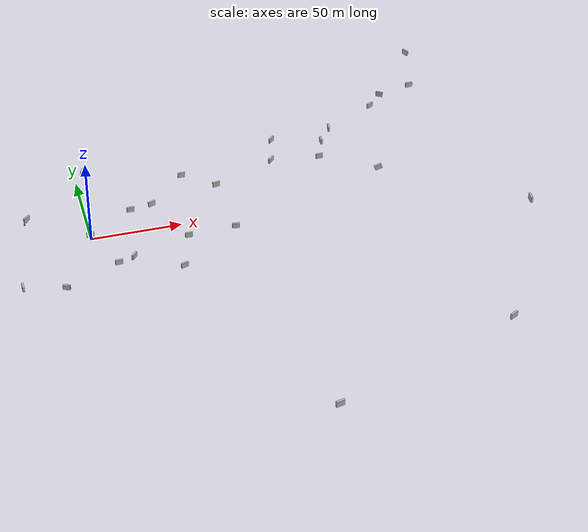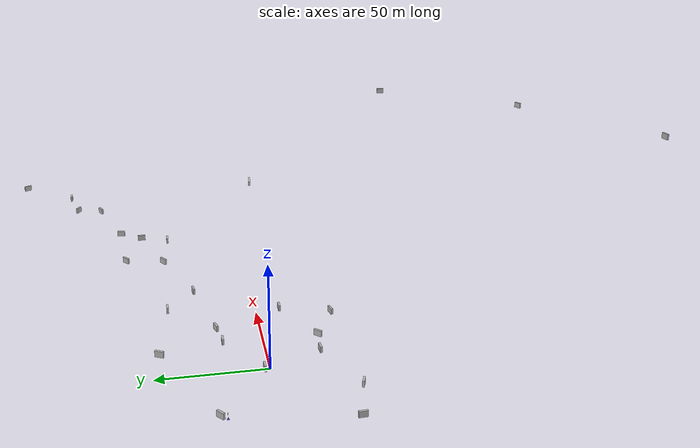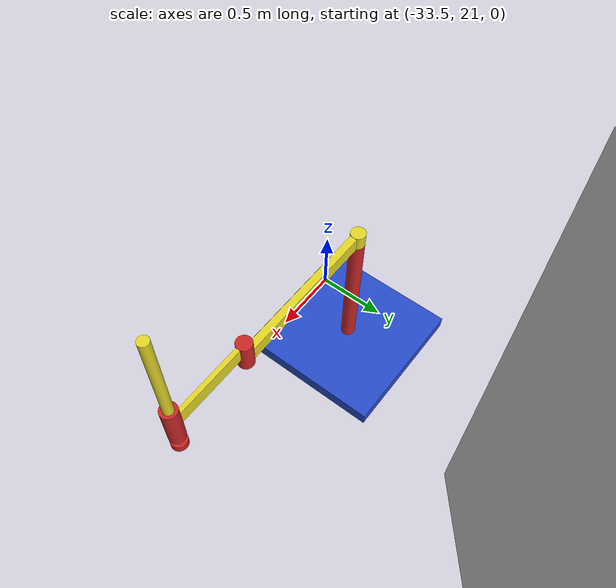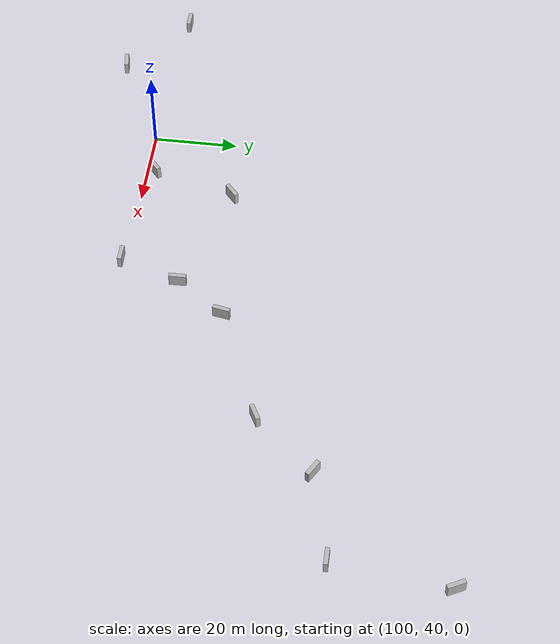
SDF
<sdf version="1.6">
 <world name="default">
  <scene>
   <grid>0</grid>
   <origin_visual>0</origin_visual>
   <ambient>0.4 0.4 0.4 1</ambient>
   <background>0.7 0.7 0.7 1</background>
   <shadows>1</shadows>
  </scene>
  <light name="sun" type="directional">
   <pose>0 0 -10 0 -0 0</pose>
   <diffuse>0.8 0.8 0.8 1</diffuse>
   <specular>0.2 0.2 0.2 1</specular>
   <attenuation>
    <range>1000</range>
    <constant>0.9</constant>
    <linear>0.01</linear>
    <quadratic>0.001</quadratic>
   </attenuation>
   <direction>-0.5 0.1 -0.9</direction>
  </light>
  <gravity>0 0 -9.8</gravity>
  <magnetic_field>6e-06 2.3e-05 -4.2e-05</magnetic_field>
  <atmosphere type="adiabatic"/>
  <physics name="default_physics" default="0" type="ode">
   <max_step_size>0.001</max_step_size>
   <real_time_factor>1</real_time_factor>
   <real_time_update_rate>1000</real_time_update_rate>
  </physics>
  <spherical_coordinates>
   <surface_model>EARTH_WGS84</surface_model>
   <latitude_deg>0</latitude_deg>
   <longitude_deg>0</longitude_deg>
   <elevation>0</elevation>
   <heading_deg>0</heading_deg>
  </spherical_coordinates>
  <model name="slide-0">
   <static>1</static>
   <link name="link">
    <pose>0 0 1.5 0 -0 0</pose>
    <collision name="collision"><geometry><box><size>4 1 3</size></box></geometry></collision>
    <visual name="visual">
     <geometry><box><size>4 1 3</size></box></geometry>
     <material>
      <script>
       <uri>model://slide-0/materials/scripts</uri>
       <uri>model://slide-0/materials/textures</uri>
       <name>Slides/slide_0</name>
      </script>
     </material>
    </visual>
   </link>
   <pose>219.596 121.414 5.9212 0 -0 2.05981</pose>
  </model>
  <model name="slide-1">
   <static>1</static>
   <link name="link">
    <pose>0 0 1.5 0 -0 0</pose>
    <collision name="collision"><geometry><box><size>4 1 3</size></box></geometry></collision>
    <visual name="visual">
     <geometry><box><size>4 1 3</size></box></geometry>
     <material>
      <script>
       <uri>model://slide-1/materials/scripts</uri>
       <uri>model://slide-1/materials/textures</uri>
       <name>Slides/slide_1</name>
      </script>
     </material>
    </visual>
   </link>
   <pose>213.255 95.2102 0 0 0 -3.13235</pose>
  </model>
  <model name="slide-2">
   <static>1</static>
   <link name="link">
    <pose>0 0 1.5 0 -0 0</pose>
    <collision name="collision"><geometry><box><size>4 1 3</size></box></geometry></collision>
    <visual name="visual">
     <geometry><box><size>4 1 3</size></box></geometry>
     <material>
      <script>
       <uri>model://slide-2/materials/scripts</uri>
       <uri>model://slide-2/materials/textures</uri>
       <name>Slides/slide_2</name>
      </script>
     </material>
    </visual>
   </link>
   <pose>192.468 89.9119 0.115548 0.020057 -0.032168 2.60794</pose>
  </model>
  <model name="slide-4">
   <static>1</static>
   <link name="link">
    <pose>0 0 1.5 0 -0 0</pose>
    <collision name="collision"><geometry><box><size>4 1 3</size></box></geometry></collision>
    <visual name="visual">
     <geometry><box><size>4 1 3</size></box></geometry>
     <material>
      <script>
       <uri>model://slide-4/materials/scripts</uri>
       <uri>model://slide-4/materials/textures</uri>
       <name>Slides/slide_4</name>
      </script>
     </material>
    </visual>
   </link>
   <pose>152.828 64.4325 0 0 -0 1.38353</pose>
  </model>
  <model name="slide-3">
   <static>1</static>
   <link name="link">
    <pose>0 0 1.5 0 -0 0</pose>
    <collision name="collision"><geometry><box><size>4 1 3</size></box></geometry></collision>
    <visual name="visual">
     <geometry><box><size>4 1 3</size></box></geometry>
     <material>
      <script>
       <uri>model://slide-3/materials/scripts</uri>
       <uri>model://slide-3/materials/textures</uri>
       <name>Slides/slide_3</name>
      </script>
     </material>
    </visual>
   </link>
   <pose>181.967 76.1868 2.92123 0 0 -2.64573</pose>
  </model>
  <model name="slide-5">
   <static>1</static>
   <link name="link">
    <pose>0 0 1.5 0 -0 0</pose>
    <collision name="collision"><geometry><box><size>4 1 3</size></box></geometry></collision>
    <visual name="visual">
     <geometry><box><size>4 1 3</size></box></geometry>
     <material>
      <script>
       <uri>model://slide-5/materials/scripts</uri>
       <uri>model://slide-5/materials/textures</uri>
       <name>Slides/slide_5</name>
      </script>
     </material>
    </visual>
   </link>
   <pose>144.815 53.0732 0.1709 0 -0 1.6033</pose>
  </model>
  <model name="slide-6">
   <static>1</static>
   <link name="link">
    <pose>0 0 1.5 0 -0 0</pose>
    <collision name="collision"><geometry><box><size>4 1 3</size></box></geometry></collision>
    <visual name="visual">
     <geometry><box><size>4 1 3</size></box></geometry>
     <material>
      <script>
       <uri>model://slide-6/materials/scripts</uri>
       <uri>model://slide-6/materials/textures</uri>
       <name>Slides/slide_6</name>
      </script>
     </material>
    </visual>
   </link>
   <pose>139.604 38.9382 0.14948 0 -0 0</pose>
  </model>
  <model name="slide-7">
   <static>1</static>
   <link name="link">
    <pose>0 0 1.5 0 -0 0</pose>
    <collision name="collision"><geometry><box><size>4 1 3</size></box></geometry></collision>
    <visual name="visual">
     <geometry><box><size>4 1 3</size></box></geometry>
     <material>
      <script>
       <uri>model://slide-7/materials/scripts</uri>
       <uri>model://slide-7/materials/textures</uri>
       <name>Slides/slide_7</name>
      </script>
     </material>
    </visual>
   </link>
   <pose>158.631 -10.182 24.6272 0 0.348285 3.05307</pose>
  </model>
  <model name="slide-8">
   <static>1</static>
   <link name="link">
    <pose>0 0 1.5 0 -0 0</pose>
    <collision name="collision"><geometry><box><size>4 1 3</size></box></geometry></collision>
    <visual name="visual">
     <geometry><box><size>4 1 3</size></box></geometry>
     <material>
      <script>
       <uri>model://slide-8/materials/scripts</uri>
       <uri>model://slide-8/materials/textures</uri>
       <name>Slides/slide_8</name>
      </script>
     </material>
    </visual>
   </link>
   <pose>206.477 -99.312 60.9982 0 0 -1.64659</pose>
  </model>
  <model name="slide-9">
   <static>1</static>
   <link name="link">
    <pose>0 0 1.5 0 -0 0</pose>
    <collision name="collision"><geometry><box><size>4 1 3</size></box></geometry></collision>
    <visual name="visual">
     <geometry><box><size>4 1 3</size></box></geometry>
     <material>
      <script>
       <uri>model://slide-9/materials/scripts</uri>
       <uri>model://slide-9/materials/textures</uri>
       <name>Slides/slide_9</name>
      </script>
     </material>
    </visual>
   </link>
   <pose>167.404 -174.953 58.7924 0 -0 0.465739</pose>
  </model>
  <model name="slide-10">
   <static>1</static>
   <link name="link">
    <pose>0 0 1.5 0 -0 0</pose>
    <collision name="collision"><geometry><box><size>4 1 3</size></box></geometry></collision>
    <visual name="visual">
     <geometry><box><size>4 1 3</size></box></geometry>
     <material>
      <script>
       <uri>model://slide-10/materials/scripts</uri>
       <uri>model://slide-10/materials/textures</uri>
       <name>Slides/slide_10</name>
      </script>
     </material>
    </visual>
   </link>
   <pose>72.3619 -215.924 67.5141 0 -0 0.208496</pose>
  </model>
  <model name="slide-11">
   <static>1</static>
   <link name="link">
    <pose>0 0 1.5 0 -0 0</pose>
    <collision name="collision"><geometry><box><size>4 1 3</size></box></geometry></collision>
    <visual name="visual">
     <geometry><box><size>4 1 3</size></box></geometry>
     <material>
      <script>
       <uri>model://slide-11/materials/scripts</uri>
       <uri>model://slide-11/materials/textures</uri>
       <name>Slides/slide_11</name>
      </script>
     </material>
    </visual>
   </link>
   <pose>51.5014 -11.3445 0.01049 0 0 -0.00227</pose>
  </model>
  <model name="slide-12">
   <static>1</static>
   <link name="link">
    <pose>0 0 1.5 0 -0 0</pose>
    <collision name="collision"><geometry><box><size>4 1 3</size></box></geometry></collision>
    <visual name="visual">
     <geometry><box><size>4 1 3</size></box></geometry>
     <material>
      <script>
       <uri>model://slide-12/materials/scripts</uri>
       <uri>model://slide-12/materials/textures</uri>
       <name>Slides/slide_12</name>
      </script>
     </material>
    </visual>
   </link>
   <pose>77.9581 -10.2897 0.15241 0 -0 3.02141</pose>
  </model>
  <model name="slide-13">
   <static>1</static>
   <link name="link">
    <pose>0 0 1.5 0 -0 0</pose>
    <collision name="collision"><geometry><box><size>4 1 3</size></box></geometry></collision>
    <visual name="visual">
     <geometry><box><size>4 1 3</size></box></geometry>
     <material>
      <script>
       <uri>model://slide-13/materials/scripts</uri>
       <uri>model://slide-13/materials/textures</uri>
       <name>Slides/slide_13</name>
      </script>
     </material>
    </visual>
   </link>
   <pose>43.9053 -35.1698 0 0 0 -2.90753</pose>
  </model>
  <model name="slide-14">
   <static>1</static>
   <link name="link">
    <pose>0 0 1.5 0 -0 0</pose>
    <collision name="collision"><geometry><box><size>4 1 3</size></box></geometry></collision>
    <visual name="visual">
     <geometry><box><size>4 1 3</size></box></geometry>
     <material>
      <script>
       <uri>model://slide-14/materials/scripts</uri>
       <uri>model://slide-14/materials/textures</uri>
       <name>Slides/slide_14</name>
      </script>
     </material>
    </visual>
   </link>
   <pose>19.0908 -24.4489 2.86763 0 -0 0.83772</pose>
  </model>
  <model name="slide-15">
   <static>1</static>
   <link name="link">
    <pose>0 0 1.5 0 -0 0</pose>
    <collision name="collision"><geometry><box><size>4 1 3</size></box></geometry></collision>
    <visual name="visual">
     <geometry><box><size>4 1 3</size></box></geometry>
     <material>
      <script>
       <uri>model://slide-15/materials/scripts</uri>
       <uri>model://slide-15/materials/textures</uri>
       <name>Slides/slide_15</name>
      </script>
     </material>
    </visual>
   </link>
   <pose>10.7937 -23.9886 0 0 -0 0.062059</pose>
  </model>
  <model name="slide-16">
   <static>1</static>
   <link name="link">
    <pose>0 0 1.5 0 -0 0</pose>
    <collision name="collision"><geometry><box><size>4 1 3</size></box></geometry></collision>
    <visual name="visual">
     <geometry><box><size>4 1 3</size></box></geometry>
     <material>
      <script>
       <uri>model://slide-16/materials/scripts</uri>
       <uri>model://slide-16/materials/textures</uri>
       <name>Slides/slide_16</name>
      </script>
     </material>
    </visual>
   </link>
   <pose>-19.1977 -36.8975 0 0 -0 2.78144</pose>
  </model>
  <model name="slide-17">
   <static>1</static>
   <link name="link">
    <pose>0 0 1.5 0 -0 0</pose>
    <collision name="collision"><geometry><box><size>4 1 3</size></box></geometry></collision>
    <visual name="visual">
     <geometry><box><size>4 1 3</size></box></geometry>
     <material>
      <script>
       <uri>model://slide-17/materials/scripts</uri>
       <uri>model://slide-17/materials/textures</uri>
       <name>Slides/slide_17</name>
      </script>
     </material>
    </visual>
   </link>
   <pose>-41.1956 -31.4848 0 0 -0 1.61564</pose>
  </model>
  <model name="slide-18">
   <static>0</static>
   <link name="link">
    <pose>0 0 1.5 0 -0 0</pose>
    <collision name="collision"><geometry><box><size>4 1 3</size></box></geometry></collision>
    <visual name="visual">
     <geometry><box><size>4 1 3</size></box></geometry>
     <material>
      <script>
       <uri>model://slide-18/materials/scripts</uri>
       <uri>model://slide-18/materials/textures</uri>
       <name>Slides/slide_18</name>
      </script>
     </material>
    </visual>
    <inertial>
     <inertia><ixx>1</ixx><ixy>0</ixy><ixz>0</ixz><iyy>1</iyy><iyz>0</iyz><izz>1</izz></inertia>
     <mass>1</mass>
    </inertial>
   </link>
   <pose>-31.5178 24.2433 -5e-06 0 2e-06 0.705034</pose>
  </model>
  <model name="slide-19">
   <static>1</static>
   <link name="link">
    <pose>0 0 1.5 0 -0 0</pose>
    <collision name="collision"><geometry><box><size>4 1 3</size></box></geometry></collision>
    <visual name="visual">
     <geometry><box><size>4 1 3</size></box></geometry>
     <material>
      <script>
       <uri>model://slide-19/materials/scripts</uri>
       <uri>model://slide-19/materials/textures</uri>
       <name>Slides/slide_19</name>
      </script>
     </material>
    </visual>
   </link>
   <pose>3.65499 46.6754 9.0159 0 -0 1.0947</pose>
  </model>
  <model name="slide-20">
   <static>1</static>
   <link name="link">
    <pose>0 0 1.5 0 -0 0</pose>
    <collision name="collision"><geometry><box><size>4 1 3</size></box></geometry></collision>
    <visual name="visual">
     <geometry><box><size>4 1 3</size></box></geometry>
     <material>
      <script>
       <uri>model://slide-20/materials/scripts</uri>
       <uri>model://slide-20/materials/textures</uri>
       <name>Slides/slide_20</name>
      </script>
     </material>
    </visual>
   </link>
   <pose>-0.067438 2.35757 0 0 -0 0.022536</pose>
  </model>
  <model name="slide-21">
   <static>0</static>
   <link name="link">
    <pose>0 0 1.5 0 -0 0</pose>
    <collision name="collision"><geometry><box><size>4 1 3</size></box></geometry></collision>
    <visual name="visual">
     <geometry><box><size>4 1 3</size></box></geometry>
     <material>
      <script>
       <uri>model://slide-21/materials/scripts</uri>
       <uri>model://slide-21/materials/textures</uri>
       <name>Slides/slide_21</name>
      </script>
     </material>
    </visual>
    <inertial>
     <inertia><ixx>1</ixx><ixy>0</ixy><ixz>0</ixz><iyy>1</iyy><iyz>0</iyz><izz>1</izz></inertia>
     <mass>1</mass>
    </inertial>
   </link>
   <pose>25.1421 18.3279 -9e-06 0 -4e-06 -1.4e-05</pose>
  </model>
  <model name="slide-22">
   <static>1</static>
   <link name="link">
    <pose>0 0 1.5 0 -0 0</pose>
    <collision name="collision"><geometry><box><size>4 1 3</size></box></geometry></collision>
    <visual name="visual">
     <geometry><box><size>4 1 3</size></box></geometry>
     <material>
      <script>
       <uri>model://slide-22/materials/scripts</uri>
       <uri>model://slide-22/materials/textures</uri>
       <name>Slides/slide_22</name>
      </script>
     </material>
    </visual>
   </link>
   <pose>37.3862 20.341 0 0 -0 0.306592</pose>
  </model>
  <model name="slide-23">
   <static>1</static>
   <link name="link">
    <pose>0 0 1.5 0 -0 0</pose>
    <collision name="collision"><geometry><box><size>4 1 3</size></box></geometry></collision>
    <visual name="visual">
     <geometry><box><size>4 1 3</size></box></geometry>
     <material>
      <script>
       <uri>model://slide-23/materials/scripts</uri>
       <uri>model://slide-23/materials/textures</uri>
       <name>Slides/slide_23</name>
      </script>
     </material>
    </visual>
   </link>
   <pose>58.9084 41.7673 0 0 -0 0</pose>
  </model>
  <model name="slide-24">
   <static>1</static>
   <link name="link">
    <pose>0 0 1.5 0 -0 0</pose>
    <collision name="collision"><geometry><box><size>4 1 3</size></box></geometry></collision>
    <visual name="visual">
     <geometry><box><size>4 1 3</size></box></geometry>
     <material>
      <script>
       <uri>model://slide-24/materials/scripts</uri>
       <uri>model://slide-24/materials/textures</uri>
       <name>Slides/slide_24</name>
      </script>
     </material>
    </visual>
   </link>
   <pose>76.0369 28.3576 0 0 0 -2.99952</pose>
  </model>
  <model name="slide-25">
   <static>1</static>
   <link name="link">
    <pose>0 0 1.5 0 -0 0</pose>
    <collision name="collision"><geometry><box><size>4 1 3</size></box></geometry></collision>
    <visual name="visual">
     <geometry><box><size>4 1 3</size></box></geometry>
     <material>
      <script>
       <uri>model://slide-25/materials/scripts</uri>
       <uri>model://slide-25/materials/textures</uri>
       <name>Slides/slide_25</name>
      </script>
     </material>
    </visual>
   </link>
   <pose>111.718 42.0434 0.53821 0 0.075115 -2.45428</pose>
  </model>
  <model name="slide-26">
   <static>1</static>
   <link name="link">
    <pose>0 0 1.5 0 -0 0</pose>
    <collision name="collision"><geometry><box><size>4 1 3</size></box></geometry></collision>
    <visual name="visual">
     <geometry><box><size>4 1 3</size></box></geometry>
     <material>
      <script>
       <uri>model://slide-26/materials/scripts</uri>
       <uri>model://slide-26/materials/textures</uri>
       <name>Slides/slide_26</name>
      </script>
     </material>
    </visual>
   </link>
   <pose>116.976 61.5064 0 0 -0 0.717507</pose>
  </model>
  <model name="simple_arm">
   <link name="arm_base">
    <inertial>
     <pose>0 0 0.00099 0 -0 0</pose>
     <inertia><ixx>1.11</ixx><ixy>0</ixy><ixz>0</ixz><iyy>100.11</iyy><iyz>0</iyz><izz>1.01</izz></inertia>
     <mass>101</mass>
    </inertial>
    <collision name="arm_base_geom">
     <pose>0 0 0.05 0 -0 0</pose>
     <geometry><box><size>1 1 0.1</size></box></geometry>
    </collision>
    <visual name="arm_base_geom_visual">
     <pose>0 0 0.05 0 -0 0</pose>
     <geometry><box><size>1 1 0.1</size></box></geometry>
     <material>
      <script><uri>file://media/materials/scripts/gazebo.material</uri><name>Gazebo/Blue</name></script>
     </material>
    </visual>
    <collision name="arm_base_geom_arm_trunk">
     <pose>0 0 0.6 0 -0 0</pose>
     <geometry><cylinder><radius>0.05</radius><length>1</length></cylinder></geometry>
    </collision>
    <visual name="arm_base_geom_arm_trunk_visual">
     <pose>0 0 0.6 0 -0 0</pose>
     <geometry><cylinder><radius>0.05</radius><length>1</length></cylinder></geometry>
     <material>
      <script><uri>file://media/materials/scripts/gazebo.material</uri><name>Gazebo/Red</name></script>
     </material>
    </visual>
   </link>
   <link name="arm_shoulder_pan">
    <pose>0 0 1.1 0 -0 0</pose>
    <inertial>
     <pose>0.045455 0 0 0 -0 0</pose>
     <inertia><ixx>0.011</ixx><ixy>0</ixy><ixz>0</ixz><iyy>0.0225</iyy><iyz>0</iyz><izz>0.0135</izz></inertia>
     <mass>1.1</mass>
    </inertial>
    <collision name="arm_shoulder_pan_geom">
     <pose>0 0 0.05 0 -0 0</pose>
     <geometry><cylinder><radius>0.05</radius><length>0.1</length></cylinder></geometry>
    </collision>
    <visual name="arm_shoulder_pan_geom_visual">
     <pose>0 0 0.05 0 -0 0</pose>
     <geometry><cylinder><radius>0.05</radius><length>0.1</length></cylinder></geometry>
     <material>
      <script><uri>file://media/materials/scripts/gazebo.material</uri><name>Gazebo/Yellow</name></script>
     </material>
    </visual>
    <collision name="arm_shoulder_pan_geom_arm_shoulder">
     <pose>0.55 0 0.05 0 -0 0</pose>
     <geometry><box><size>1 0.05 0.1</size></box></geometry>
    </collision>
    <visual name="arm_shoulder_pan_geom_arm_shoulder_visual">
     <pose>0.55 0 0.05 0 -0 0</pose>
     <geometry><box><size>1 0.05 0.1</size></box></geometry>
     <material>
      <script><uri>file://media/materials/scripts/gazebo.material</uri><name>Gazebo/Yellow</name></script>
     </material>
    </visual>
   </link>
   <link name="arm_elbow_pan">
    <pose>1.05 0 1.1 0 -0 0</pose>
    <inertial>
     <pose>0.0875 0 0.083333 0 -0 0</pose>
     <inertia>
      <ixx>0.031</ixx>
      <ixy>0</ixy>
      <ixz>0.005</ixz>
      <iyy>0.07275</iyy>
      <iyz>0</iyz>
      <izz>0.04475</izz>
     </inertia>
     <mass>1.2</mass>
    </inertial>
    <collision name="arm_elbow_pan_geom">
     <pose>0 0 0.1 0 -0 0</pose>
     <geometry><cylinder><radius>0.05</radius><length>0.2</length></cylinder></geometry>
    </collision>
    <visual name="arm_elbow_pan_geom_visual">
     <pose>0 0 0.1 0 -0 0</pose>
     <geometry><cylinder><radius>0.05</radius><length>0.2</length></cylinder></geometry>
     <material>
      <script><uri>file://media/materials/scripts/gazebo.material</uri><name>Gazebo/Red</name></script>
     </material>
    </visual>
    <collision name="arm_elbow_pan_geom_arm_elbow">
     <pose>0.3 0 0.15 0 -0 0</pose>
     <geometry><box><size>0.5 0.03 0.1</size></box></geometry>
    </collision>
    <visual name="arm_elbow_pan_geom_arm_elbow_visual">
     <pose>0.3 0 0.15 0 -0 0</pose>
     <geometry><box><size>0.5 0.03 0.1</size></box></geometry>
     <material>
      <script><uri>file://media/materials/scripts/gazebo.material</uri><name>Gazebo/Yellow</name></script>
     </material>
    </visual>
    <collision name="arm_elbow_pan_geom_arm_wrist">
     <pose>0.55 0 0.15 0 -0 0</pose>
     <geometry><cylinder><radius>0.05</radius><length>0.3</length></cylinder></geometry>
    </collision>
    <visual name="arm_elbow_pan_geom_arm_wrist_visual">
     <pose>0.55 0 0.15 0 -0 0</pose>
     <geometry><cylinder><radius>0.05</radius><length>0.3</length></cylinder></geometry>
     <material>
      <script><uri>file://media/materials/scripts/gazebo.material</uri><name>Gazebo/Red</name></script>
     </material>
    </visual>
   </link>
   <link name="arm_wrist_lift">
    <pose>1.6 0 1.05 0 -0 0</pose>
    <inertial>
     <inertia><ixx>0.01</ixx><ixy>0</ixy><ixz>0</ixz><iyy>0.01</iyy><iyz>0</iyz><izz>0.001</izz></inertia>
     <mass>0.1</mass>
    </inertial>
    <collision name="arm_wrist_lift_geom">
     <pose>0 0 0.5 0 -0 0</pose>
     <geometry><cylinder><radius>0.03</radius><length>1</length></cylinder></geometry>
    </collision>
    <visual name="arm_wrist_lift_geom_visual">
     <pose>0 0 0.5 0 -0 0</pose>
     <geometry><cylinder><radius>0.03</radius><length>1</length></cylinder></geometry>
     <material>
      <script><uri>file://media/materials/scripts/gazebo.material</uri><name>Gazebo/Yellow</name></script>
     </material>
    </visual>
   </link>
   <link name="arm_wrist_roll">
    <pose>1.6 0 1 0 -0 0</pose>
    <inertial>
     <inertia><ixx>0.01</ixx><ixy>0</ixy><ixz>0</ixz><iyy>0.01</iyy><iyz>0</iyz><izz>0.001</izz></inertia>
     <mass>0.1</mass>
    </inertial>
    <collision name="arm_wrist_roll_geom">
     <pose>0 0 0.025 0 -0 0</pose>
     <geometry><cylinder><radius>0.05</radius><length>0.05</length></cylinder></geometry>
    </collision>
    <visual name="arm_wrist_roll_geom_visual">
     <pose>0 0 0.025 0 -0 0</pose>
     <geometry><cylinder><radius>0.05</radius><length>0.05</length></cylinder></geometry>
     <material>
      <script><uri>file://media/materials/scripts/gazebo.material</uri><name>Gazebo/Red</name></script>
     </material>
    </visual>
   </link>
   <joint name="arm_shoulder_pan_joint" type="revolute">
    <parent>arm_base</parent>
    <child>arm_shoulder_pan</child>
    <axis>
     <dynamics>
      <damping>1</damping>
      <friction>0</friction>
      <spring_reference>0</spring_reference>
      <spring_stiffness>0</spring_stiffness>
     </dynamics>
     <xyz>0 0 1</xyz>
     <use_parent_model_frame>1</use_parent_model_frame>
     <limit><lower>-1e+16</lower><upper>1e+16</upper></limit>
    </axis>
   </joint>
   <joint name="arm_elbow_pan_joint" type="revolute">
    <parent>arm_shoulder_pan</parent>
    <child>arm_elbow_pan</child>
    <axis>
     <dynamics>
      <damping>1</damping>
      <friction>0</friction>
      <spring_reference>0</spring_reference>
      <spring_stiffness>0</spring_stiffness>
     </dynamics>
     <xyz>0 0 1</xyz>
     <use_parent_model_frame>1</use_parent_model_frame>
     <limit><lower>-1e+16</lower><upper>1e+16</upper></limit>
    </axis>
   </joint>
   <joint name="arm_wrist_lift_joint" type="prismatic">
    <parent>arm_elbow_pan</parent>
    <child>arm_wrist_lift</child>
    <axis>
     <dynamics>
      <damping>1</damping>
      <friction>0</friction>
      <spring_reference>0</spring_reference>
      <spring_stiffness>0</spring_stiffness>
     </dynamics>
     <limit><lower>-0.8</lower><upper>0.1</upper></limit>
     <xyz>0 0 1</xyz>
     <use_parent_model_frame>1</use_parent_model_frame>
    </axis>
   </joint>
   <joint name="arm_wrist_roll_joint" type="revolute">
    <parent>arm_wrist_lift</parent>
    <child>arm_wrist_roll</child>
    <axis>
     <dynamics>
      <damping>1</damping>
      <friction>0</friction>
      <spring_reference>0</spring_reference>
      <spring_stiffness>0</spring_stiffness>
     </dynamics>
     <limit><lower>-2.99999</lower><upper>2.99999</upper></limit>
     <xyz>0 0 1</xyz>
     <use_parent_model_frame>1</use_parent_model_frame>
    </axis>
   </joint>
   <pose>-33.1882 21.4344 0 0 0 -0.002317</pose>
  </model>
 </world>
</sdf>
